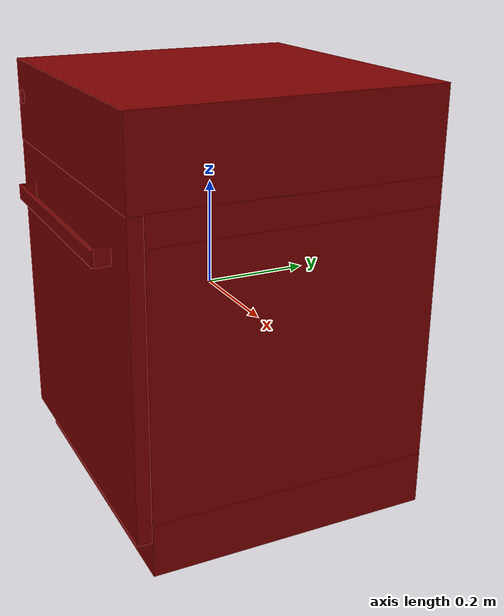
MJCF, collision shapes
<?xml version='1.0' encoding='UTF-8'?>
<mujoco model="model">
  <option timestep="0.002" gravity="0.0 0.0 -9.81"/>
  <compiler angle="radian"/>
  <asset>
    <mesh file="visuals/button_power.obj" name="button_power_vis"/>
    <mesh file="visuals/Body001.obj" name="Body001_vis"/>
    <mesh file="visuals/door.obj" name="door_vis"/>
    <mesh file="visuals/rack0.obj" name="rack0_vis"/>
    <mesh file="visuals/rack1.obj" name="rack1_vis"/>
    <texture file="visuals/T_BC001.png" name="Body001_material" type="2d"/>
    <material name="Body001_material" rgba="1 1 1 1.0" texture="Body001_material" shininess="0.2512328028678894" specular="2"/>
    <texture file="visuals/T_BC001.png" name="button_power_material" type="2d"/>
    <material name="button_power_material" rgba="1 1 1 1.0" texture="button_power_material" shininess="0.2512328028678894" specular="0.3103448502657381"/>
    <texture file="visuals/T_BC001.png" name="door_material" type="2d"/>
    <material name="door_material" rgba="1 1 1 1.0" texture="door_material" shininess="0.2512328028678894" specular="2"/>
    <texture file="visuals/T_BC001.png" name="rack0_material" type="2d"/>
    <material name="rack0_material" rgba="1 1 1 1.0" texture="rack0_material" shininess="0.2512328028678894" specular="3"/>
    <texture file="visuals/T_BC001.png" name="rack1_material" type="2d"/>
    <material name="rack1_material" rgba="1 1 1 1.0" texture="rack1_material" shininess="0.2512328028678894" specular="3"/>
  </asset>
  <default>
    <default class="visual">
      <geom conaffinity="0" contype="0" group="1" type="mesh"/>
    </default>
    <default class="collision">
      <geom group="0" rgba="0.5 0 0 0.5"/>
    </default>
    <default class="spawn">
      <geom group="0" rgba="1 1 1 0.5" contype="0" conaffinity="0"/>
      <site group="0" rgba="1 1 1 0.5"/>
    </default>
    <default class="region">
      <geom group="1" conaffinity="0" contype="0" rgba="0 1 0 0"/>
    </default>
  </default>
  <worldbody>
    <body>
      <body name="object">
        <geom mesh="Body001_vis" type="mesh" solimp="0.998 0.998 0.001" solref="0.001 1" friction="0.95 0.3 0.1" class="visual" material="Body001_material"/>
        <geom class="collision" type="box" pos="-0.00177823 0.01467969 0.32512522" size="0.29804348945617676 0.28858518600463867 0.0793590173125267" quat="1.0 0.0 0.0 0.0"/>
        <geom class="collision" type="box" pos="-0.00177823 0.02901688 0.21973945" size="0.29804348945617676 0.27424800395965576 0.027695506811141968" quat="1.0 0.0 0.0 0.0"/>
        <geom class="collision" type="box" pos="-0.27568915 0.02901688 -0.05877522" size="0.024132370948791504 0.27424800395965576 0.26131245493888855" quat="1.0 0.0 0.0 0.0"/>
        <geom class="collision" type="box" pos="0.27381995 0.02901688 -0.05877522" size="0.02218632400035858 0.27424800395965576 0.26131245493888855" quat="1.0 0.0 0.0 0.0"/>
        <geom class="collision" type="box" pos="-0.00177823 0.02901688 -0.35299551" size="0.29804348945617676 0.27424800395965576 0.05177992209792137" quat="1.0 0.0 0.0 0.0"/>
        <geom class="collision" type="box" pos="-0.00088241 0.25872649 -0.05458955" size="0.25167155265808105 0.04453840106725693 0.2503986656665802" quat="1.0 0.0 0.0 0.0"/>
        <geom class="collision" type="box" pos="0.24383005 -0.03295913 -0.03038457" size="0.010900299064815044 0.1843888759613037 0.007303493097424507" quat="1.0 0.0 0.0 0.0"/>
        <geom class="collision" type="box" pos="-0.24466084 -0.03295913 -0.03038457" size="0.010900299996137619 0.1843888759613037 0.0073034935630857944" quat="1.0 0.0 0.0 0.0"/>
        <geom class="collision" type="box" pos="0.24383005 -0.03295913 -0.26445565" size="0.010900300927460194 0.1843888908624649 0.007303494028747082" quat="1.0 0.0 0.0 0.0"/>
        <geom class="collision" type="box" pos="-0.24466084 -0.03295913 -0.26445565" size="0.010900301858782768 0.1843889057636261 0.007303494494408369" quat="1.0 0.0 0.0 0.0"/>
        <body name="button_power">
          <joint axis="0.0 1.0 0.0" pos="-0.26339871 -0.27605458 0.33619192" limited="true" name="button_power_joint" range="0.0 0.002" type="slide" damping="1" frictionloss="1" armature=".01" stiffness="4" springref="-1"/>
          <geom mesh="button_power_vis" type="mesh" solimp="0.998 0.998 0.001" solref="0.001 1" friction="0.95 0.3 0.1" class="visual" material="button_power_material"/>
          <geom class="collision" type="cylinder" pos="-0.26333568 -0.27668836 0.33622333" size="0.013412986882030964 0.001069585676304996" quat="0.7071068286895752 0.7071067690849304 0.0 0.0"/>
        </body>
        <body name="door">
          <joint axis="1.0 0.0 0.0" pos="-0.00140643 -0.27353656941967247 -0.3353256699330902" limited="true" name="door_joint" range="0.0 0.7035987755982988" type="hinge" damping="1" frictionloss="10" armature="1" stiffness="2"/>
          <geom mesh="door_vis" type="mesh" solimp="0.998 0.998 0.001" solref="0.001 1" friction="0.95 0.3 0.1" class="visual" material="door_material"/>
          <geom class="collision" type="box" pos="-0.00005808 -0.30321457 0.16038239" size="0.21962477266788483 0.003024103818461299 0.014494245871901512" quat="1.0 0.0 0.0 0.0" name="door_handle_main"/>
          <geom class="collision" type="box" pos="-0.21845451 -0.28778654 0.16053617" size="0.0032157255336642265 0.013620124198496342 0.014182114973664284" quat="1.0 0.0 0.0 0.0"/>
          <geom class="collision" type="box" pos="0.21869750 -0.28736626 0.16053617" size="0.0032104982528835535 0.013199752196669579 0.014575919136404991" quat="1.0 0.0 0.0 0.0"/>
          <geom class="collision" type="box" pos="-0.00140643 -0.25991874 -0.04509626" size="0.2971552312374115 0.01361782941967249 0.2902294099330902" quat="1.0 0.0 0.0 0.0" name="door_main"/>
        </body>
        <body name="rack0">
          <geom class="region" name="reg_rack0" type="box" pos="0.0005391599999999969 -0.0318602 -0.12172383" size="0.21964761 0.15385995 0.07859109"/>
          <joint axis="0.0 -1.0 0.0" pos="0.00768080 -0.03099884 -0.22583704" limited="true" name="rack0_joint" range="0.0 0.3" type="slide" damping="1" frictionloss="1" armature=".01" stiffness="0.05"/>
          <geom mesh="rack0_vis" type="mesh" solimp="0.998 0.998 0.001" solref="0.001 1" friction="0.95 0.3 0.1" class="visual" material="rack0_material"/>
          <geom class="collision" type="box" pos="-0.21289666 -0.03105473 -0.25407311" size="0.02861114591360092 0.17393465340137482 0.002080216072499752" quat="1.0 0.0 0.0 0.0"/>
          <geom class="collision" type="box" pos="0.00054535 0.14380837 -0.18787077" size="0.23066891729831696 0.0020802852232009172 0.08269806951284409" quat="1.0 0.0 0.0 0.0"/>
          <geom class="collision" type="box" pos="0.00054535 -0.20568841 -0.18787077" size="0.23066891729831696 0.0025122754741460085 0.08269806951284409" quat="1.0 0.0 0.0 0.0"/>
          <geom class="collision" type="box" pos="0.23808181 -0.03248625 -0.18041717" size="0.0062791104428470135 0.1759839951992035 0.0752444714307785" quat="1.0 0.0 0.0 0.0"/>
          <geom class="collision" type="box" pos="-0.24302222 -0.03248625 -0.18083633" size="0.0019362475723028183 0.1759839951992035 0.07566363364458084" quat="1.0 0.0 0.0 0.0"/>
          <geom class="collision" type="box" pos="0.21793766 -0.03105473 -0.25407311" size="0.024869751185178757 0.1739347130060196 0.0020802170038223267" quat="1.0 0.0 0.0 0.0"/>
          <geom class="collision" type="box" pos="0.11940948 -0.03105473 -0.26743525" size="0.012249970808625221 0.1739347279071808 0.0020802172366529703" quat="1.0 0.0 0.0 0.0"/>
          <geom class="collision" type="box" pos="0.04976084 -0.03105473 -0.26743525" size="0.012249971739947796 0.17393474280834198 0.002080217469483614" quat="1.0 0.0 0.0 0.0"/>
          <geom class="collision" type="box" pos="-0.04785695 -0.03105473 -0.26743525" size="0.012249973602592945 0.17393475770950317 0.0020802177023142576" quat="1.0 0.0 0.0 0.0"/>
          <geom class="collision" type="box" pos="-0.11152510 -0.03105473 -0.26780644" size="0.01224997453391552 0.17393477261066437 0.0020802179351449013" quat="1.0 0.0 0.0 0.0"/>
          <geom class="collision" type="box" pos="-0.12786569 -0.03105473 -0.23669188" size="0.03250827267765999 0.17393484711647034 0.002080218866467476" quat="0.7633305191993713 0.0 0.6460081338882446 0.0"/>
          <geom class="collision" type="box" pos="-0.16917881 -0.03105473 -0.22969912" size="0.04203127697110176 0.17393484711647034 0.004355957731604576" quat="0.9576954245567322 0.0 -0.28778377175331116 0.0"/>
          <geom class="collision" type="box" pos="0.02454331 -0.03105473 -0.24564180" size="0.02700870670378208 0.17393484711647034 0.002080218866467476" quat="0.8822809457778931 0.0 0.4707231819629669 0.0"/>
          <geom class="collision" type="box" pos="0.17281966 -0.03105473 -0.22915442" size="0.04005209729075432 0.17393484711647034 0.005054346285760403" quat="0.9604085683822632 0.0 0.27859532833099365 0.0"/>
          <geom class="collision" type="box" pos="0.13449025 -0.03105473 -0.23977327" size="0.02700870670378208 0.17393484711647034 0.0020802184008061886" quat="0.6370745897293091 0.0 0.7708021998405457 0.0"/>
          <geom class="collision" type="box" pos="0.06340965 -0.03105473 -0.25696263" size="0.011668791994452477 0.17393484711647034 0.002080219332128763" quat="0.5749940276145935 0.0 0.8181576132774353 0.0"/>
          <geom class="collision" type="box" pos="0.10461231 -0.03105473 -0.25696263" size="0.011668792925775051 0.17393484711647034 0.0020802197977900505" quat="0.8316628932952881 0.0 0.555280864238739 0.0"/>
          <geom class="collision" type="box" pos="0.08283009 -0.03105473 -0.24838564" size="0.017921647056937218 0.17393478751182556 0.0021293272729963064" quat="1.0 0.0 0.0 0.0"/>
          <geom class="collision" type="box" pos="-0.09897950 -0.03105473 -0.25696263" size="0.011668791994452477 0.17393484711647034 0.002080219332128763" quat="0.5749940276145935 0.0 0.8181576132774353 0.0"/>
          <geom class="collision" type="box" pos="-0.06227265 -0.03105473 -0.25696263" size="0.011668792925775051 0.17393484711647034 0.002080219332128763" quat="0.8316628932952881 0.0 0.555280864238739 0.0"/>
          <geom class="collision" type="box" pos="-0.08180696 -0.03105473 -0.24838564" size="0.01567373424768448 0.17393480241298676 0.00212932750582695" quat="1.0 0.0 0.0 0.0"/>
          <geom class="collision" type="box" pos="-0.02169313 -0.03105473 -0.24553087" size="0.027008702978491783 0.17393484711647034 0.002080218866467476" quat="0.45507773756980896 0.0 0.8904517292976379 0.0"/>
          <geom class="collision" type="box" pos="0.00119191 -0.03105473 -0.22540230" size="0.011677444912493229 0.17393481731414795 0.00212932750582695" quat="1.0 0.0 0.0 0.0"/>
          <geom class="collision" type="box" pos="0.05433665 -0.03105473 -0.23392637" size="0.03453165665268898 0.17393484711647034 0.0020802190992981195" quat="0.662051260471344 0.0 0.7494585514068604 0.0"/>
          <geom class="collision" type="box" pos="-0.11183884 -0.03105473 -0.23392637" size="0.0023748327512294054 0.17393483221530914 0.03454814851284027" quat="1.0 0.0 0.0 0.0"/>
          <geom class="collision" type="box" pos="0.21061321 -0.03105473 -0.16303907" size="0.03517039492726326 0.17393484711647034 0.002080218866467476" quat="0.9728459715843201 0.0 0.23145335912704468 0.0"/>
        </body>
        <body name="rack1">
          <geom class="region" name="reg_rack1" type="box" pos="0.0008743850000000053 -0.031080695000000005 0.10925218" size="0.221449735 0.151722215 0.07429195999999999"/>
          <joint axis="0.0 -1.0 0.0" pos="0.00768080 -0.03099884 0.00813467" limited="true" name="rack1_joint" range="0.0 0.3" type="slide" damping="1" frictionloss="1" armature=".01" stiffness="0.05"/>
          <geom mesh="rack1_vis" type="mesh" solimp="0.998 0.998 0.001" solref="0.001 1" friction="0.95 0.3 0.1" class="visual" material="rack1_material"/>
          <geom class="collision" type="box" pos="-0.04785695 -0.03105473 -0.03346353" size="0.012249944731593132 0.1739344596862793 0.002080213278532028" quat="1.0 0.0 0.0 0.0"/>
          <geom class="collision" type="box" pos="0.04976084 -0.03105473 -0.03346353" size="0.012249945662915707 0.1739344596862793 0.002080213511362672" quat="1.0 0.0 0.0 0.0"/>
          <geom class="collision" type="box" pos="0.11940948 -0.03105473 -0.03346353" size="0.012249946594238281 0.1739344745874405 0.0020802137441933155" quat="1.0 0.0 0.0 0.0"/>
          <geom class="collision" type="box" pos="0.21793766 -0.03105473 -0.02010141" size="0.024869708344340324 0.17393448948860168 0.002080213977023959" quat="1.0 0.0 0.0 0.0"/>
          <geom class="collision" type="box" pos="-0.24302222 -0.03248625 0.05313539" size="0.0019362475723028183 0.1759839951992035 0.07566363364458084" quat="1.0 0.0 0.0 0.0"/>
          <geom class="collision" type="box" pos="0.23808181 -0.03248625 0.05355456" size="0.0062791104428470135 0.1759839951992035 0.0752444714307785" quat="1.0 0.0 0.0 0.0"/>
          <geom class="collision" type="box" pos="0.00001500 -0.20568841 0.04610095" size="0.23119927942752838 0.0025122754741460085 0.08269806951284409" quat="1.0 0.0 0.0 0.0"/>
          <geom class="collision" type="box" pos="0.21061321 -0.03105473 0.07093265" size="0.03517039492726326 0.17393484711647034 0.002080218866467476" quat="0.9728459715843201 0.0 0.23145335912704468 0.0"/>
          <geom class="collision" type="box" pos="-0.11183884 -0.03105473 0.00004535" size="0.0023748292587697506 0.17393454909324646 0.0345480851829052" quat="1.0 0.0 0.0 0.0"/>
          <geom class="collision" type="box" pos="0.05433665 -0.03105473 0.00004535" size="0.03453165665268898 0.17393484711647034 0.0020802190992981195" quat="0.662051260471344 0.0 0.7494585514068604 0.0"/>
          <geom class="collision" type="box" pos="0.00119191 -0.03105473 0.00856942" size="0.011677420698106289 0.17393456399440765 0.0021293240133672953" quat="1.0 0.0 0.0 0.0"/>
          <geom class="collision" type="box" pos="-0.02169313 -0.03105473 -0.01155915" size="0.027008702978491783 0.17393484711647034 0.002080218866467476" quat="0.45507773756980896 0.0 0.8904517292976379 0.0"/>
          <geom class="collision" type="box" pos="-0.08180696 -0.03105473 -0.01441392" size="0.015673711895942688 0.17393457889556885 0.002129324246197939" quat="1.0 0.0 0.0 0.0"/>
          <geom class="collision" type="box" pos="-0.06227265 -0.03105473 -0.02299091" size="0.011668792925775051 0.17393484711647034 0.002080219332128763" quat="0.8316628932952881 0.0 0.555280864238739 0.0"/>
          <geom class="collision" type="box" pos="0.00001500 0.14380837 0.04610095" size="0.23119927942752838 0.0020802852232009172 0.08269806951284409" quat="1.0 0.0 0.0 0.0"/>
          <geom class="collision" type="box" pos="-0.09897950 -0.03105473 -0.02299091" size="0.011668791994452477 0.17393484711647034 0.002080219332128763" quat="0.5749940276145935 0.0 0.8181576132774353 0.0"/>
          <geom class="collision" type="box" pos="0.08283009 -0.03105473 -0.01441392" size="0.017921630293130875 0.17393460869789124 0.0021293247118592262" quat="1.0 0.0 0.0 0.0"/>
          <geom class="collision" type="box" pos="0.10461231 -0.03105473 -0.02299091" size="0.011668792925775051 0.17393484711647034 0.0020802197977900505" quat="0.8316628932952881 0.0 0.555280864238739 0.0"/>
          <geom class="collision" type="box" pos="0.06340965 -0.03105473 -0.02299091" size="0.011668791994452477 0.17393484711647034 0.002080219332128763" quat="0.5749940276145935 0.0 0.8181576132774353 0.0"/>
          <geom class="collision" type="box" pos="0.13449025 -0.03105473 -0.00580156" size="0.02700870670378208 0.17393484711647034 0.0020802184008061886" quat="0.6370745897293091 0.0 0.7708021998405457 0.0"/>
          <geom class="collision" type="box" pos="0.17281966 -0.03105473 0.00481730" size="0.04005209729075432 0.17393484711647034 0.005054346285760403" quat="0.9604085683822632 0.0 0.27859532833099365 0.0"/>
          <geom class="collision" type="box" pos="0.02454331 -0.03105473 -0.01167008" size="0.02700870670378208 0.17393484711647034 0.002080218866467476" quat="0.8822809457778931 0.0 0.4707231819629669 0.0"/>
          <geom class="collision" type="box" pos="-0.16917881 -0.03105473 0.00427260" size="0.04203127697110176 0.17393484711647034 0.004355957731604576" quat="0.9576954245567322 0.0 -0.28778377175331116 0.0"/>
          <geom class="collision" type="box" pos="-0.12786569 -0.03105473 -0.00272016" size="0.03250827267765999 0.17393484711647034 0.002080218866467476" quat="0.7633305191993713 0.0 0.6460081338882446 0.0"/>
          <geom class="collision" type="box" pos="-0.11152510 -0.03105473 -0.03383471" size="0.0122499605640769 0.17393462359905243 0.0020802156068384647" quat="1.0 0.0 0.0 0.0"/>
          <geom class="collision" type="box" pos="-0.21289666 -0.03105473 -0.02010141" size="0.028611132875084877 0.17393463850021362 0.0020802158396691084" quat="1.0 0.0 0.0 0.0"/>
        </body>
        <geom class="region" name="reg_int" type="box" pos="-0.0005580399999999958 -0.012449515000000008 -0.07165257499999998" size="0.24582147999999998 0.22209263499999998 0.22401481499999998"/>
        <geom class="region" name="reg_main" type="box" pos="-9.999999994736442e-09 0.015663005000000008 9.999999994736442e-09" size="0.30100654 0.291667595 0.40599991"/>
      </body>
    </body>
  </worldbody>
  <actuator>
    <motor name="button_power_joint_actuator" joint="button_power_joint" gear="0.5"/>
    <motor name="door_joint_actuator" joint="door_joint" gear="50"/>
    <motor name="rack0_joint_actuator" joint="rack0_joint" gear="50"/>
    <motor name="rack1_joint_actuator" joint="rack1_joint" gear="50"/>
  </actuator>
</mujoco>
